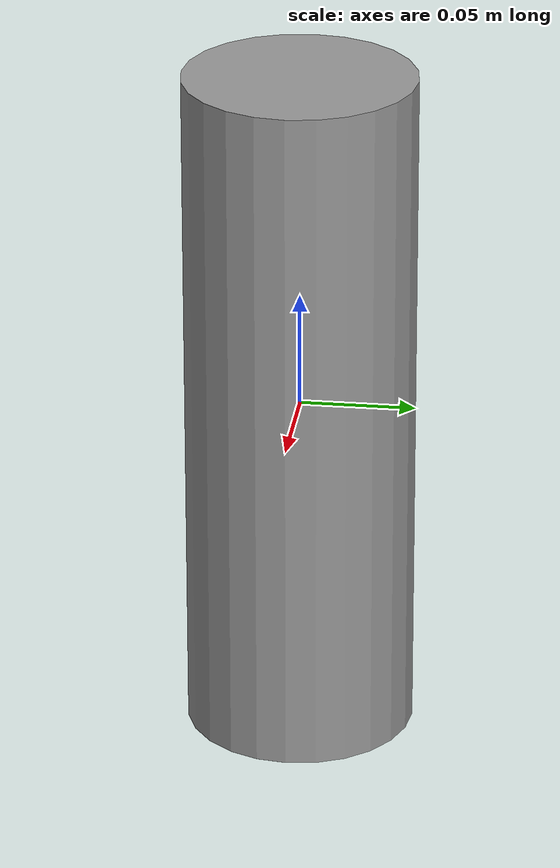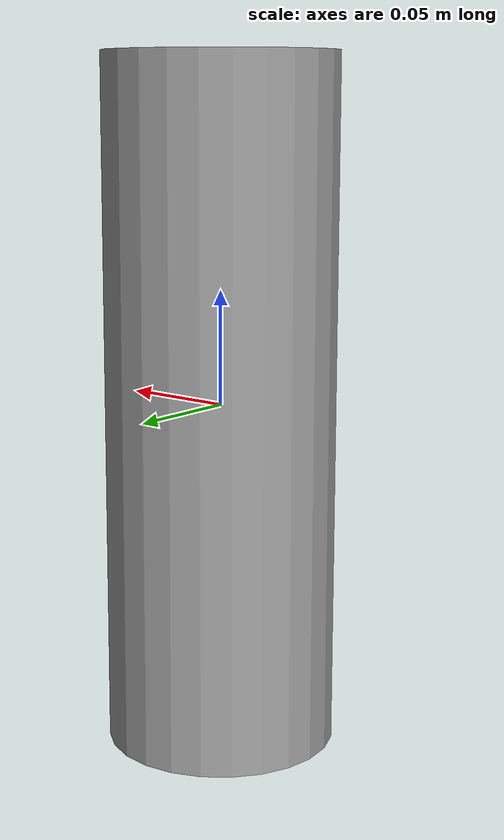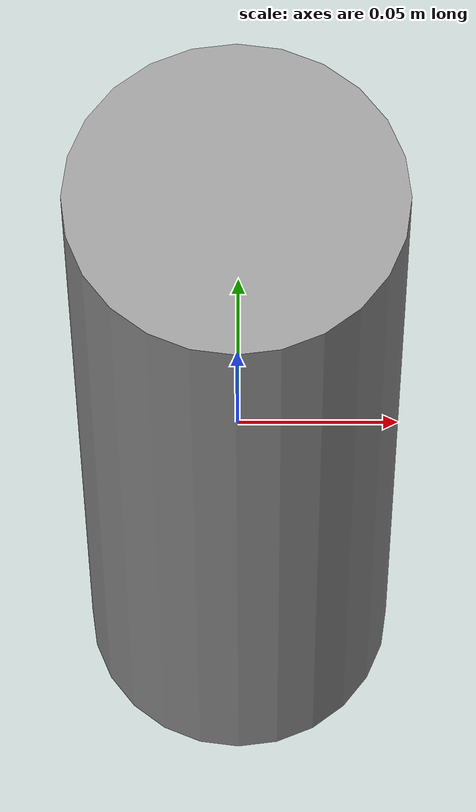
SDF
<?xml version='1.0'?>
<sdf version='1.7'>
  <model name='basic_beacon'>
    <static>false</static>
    <link name='base_link'>
      <inertial>
        <mass>0.85</mass>
        <inertia>
          <ixx>0.123958</ixx>
          <ixy>0</ixy>
          <ixz>0</ixz>
          <iyy>0.123958</iyy>
          <iyz>0</iyz>
          <izz>0.10625</izz>
        </inertia>
        <pose>0 0 0 0 -0 0</pose>
      </inertial>
      <pose>0 0 0 0 -0 0</pose>
      <gravity>1</gravity>
      <self_collide>0</self_collide>
      <kinematic>0</kinematic>
      <enable_wind>0</enable_wind>
      <visual name='visual'>
        <pose>0 0 0 0 -0 0</pose>
        <geometry>
          <cylinder>
            <radius>0.05</radius>
            <length>0.3</length>
          </cylinder>
        </geometry>
        <material>
          <lighting>1</lighting>
          <script>
            <uri>file://media/materials/scripts/gazebo.material</uri>
            <name>Gazebo/Grey</name>
          </script>
          <shader type='pixel'>
            <normal_map>__default__</normal_map>
          </shader>
          <ambient>0.3 0.3 0.3 1</ambient>
          <diffuse>0.7 0.7 0.7 1</diffuse>
          <specular>0.01 0.01 0.01 1</specular>
          <emissive>0 0 0 1</emissive>
        </material>
        <transparency>0</transparency>
        <cast_shadows>1</cast_shadows>
      </visual>
      <collision name='collision'>
        <laser_retro>0</laser_retro>
        <max_contacts>10</max_contacts>
        <pose>0 0 0 0 -0 0</pose>
        <geometry>
          <cylinder>
            <radius>0.5</radius>
            <length>1</length>
          </cylinder>
        </geometry>
        <surface>
          <friction>
            <ode>
              <mu>1</mu>
              <mu2>1</mu2>
              <fdir1>0 0 0</fdir1>
              <slip1>0</slip1>
              <slip2>0</slip2>
            </ode>
            <torsional>
              <coefficient>1</coefficient>
              <patch_radius>0</patch_radius>
              <surface_radius>0</surface_radius>
              <use_patch_radius>1</use_patch_radius>
              <ode>
                <slip>0</slip>
              </ode>
            </torsional>
          </friction>
          <bounce>
            <restitution_coefficient>0</restitution_coefficient>
            <threshold>1e+06</threshold>
          </bounce>
          <contact>
            <collide_without_contact>0</collide_without_contact>
            <collide_without_contact_bitmask>1</collide_without_contact_bitmask>
            <collide_bitmask>1</collide_bitmask>
            <ode>
              <soft_cfm>0</soft_cfm>
              <soft_erp>0.2</soft_erp>
              <kp>1e+13</kp>
              <kd>1</kd>
              <max_vel>0.01</max_vel>
              <min_depth>0</min_depth>
            </ode>
            <bullet>
              <split_impulse>1</split_impulse>
              <split_impulse_penetration_threshold>-0.01</split_impulse_penetration_threshold>
              <soft_cfm>0</soft_cfm>
              <soft_erp>0.2</soft_erp>
              <kp>1e+13</kp>
              <kd>1</kd>
            </bullet>
          </contact>
        </surface>
      </collision>
    </link>
    <static>0</static>
    <allow_auto_disable>1</allow_auto_disable>
    <plugin name='usbl_transceiver' filename='libtransceiverPlugin.so'>
      <namespace>USBL</namespace>
      <transponder_device>trasnponder_manufacturer</transponder_device>
      <transponder_ID>1</transponder_ID>
      <transceiver_device>tranceiver_manufacturer</transceiver_device>
      <transceiver_ID>168</transceiver_ID>
      <enable_ping_scheduler>0</enable_ping_scheduler>
      <transponder_attached_object>sphere</transponder_attached_object>
      <interrogation_mode>common</interrogation_mode>
      <sound_speed>1540.0</sound_speed>
      <ping_freq>2</ping_freq>
    </plugin>
    <plugin name='usbl_transponder' filename='libtransponderPlugin.so'>
      <namespace>USBL</namespace>
      <transponder_device>trasnponder_manufacturer</transponder_device>
      <transponder_ID>1</transponder_ID>
      <transceiver_device>tranceiver_manufacturer</transceiver_device>
      <transceiver_ID>168</transceiver_ID>
      <sound_speed>1540.0</sound_speed>
      <mu>0</mu>
      <sigma>0.0</sigma>
    </plugin>
  </model>
</sdf>
